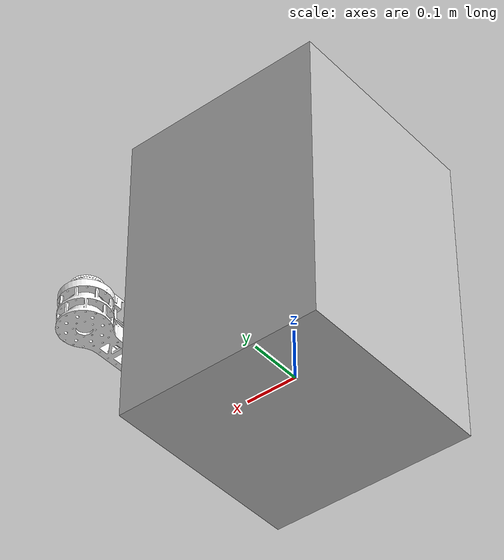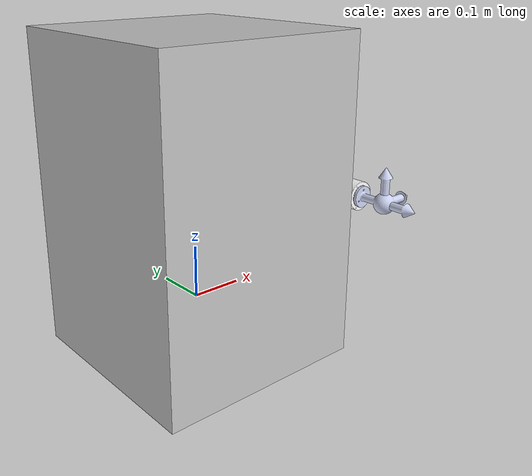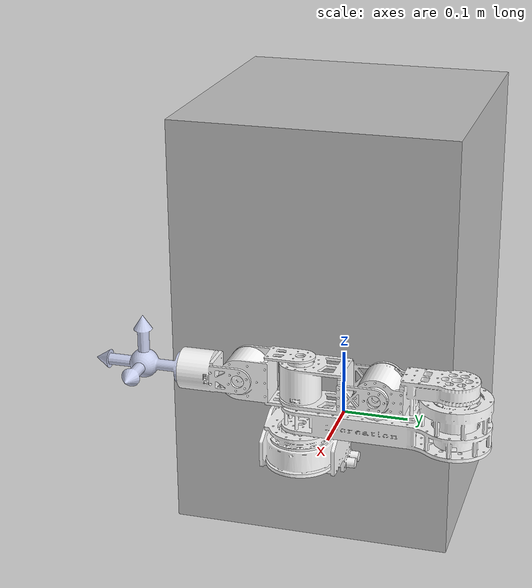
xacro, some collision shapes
<?xml version="1.0"?>
<robot xmlns:xacro="http://www.ros.org/wiki/xacro" name="rm_engineering_robot">

    <!--使用实车硬件接口还是isaac接口-->
    <xacro:arg name="hardware_type" default="real"/>

    <xacro:arg name="initial_positions_file" default="initial_positions.yaml" />

    <!-- Import rm_engineering_robot urdf file -->
    <xacro:include filename="$(find rm_engineering_robot_description)/urdf/rm_engineering_robot.urdf" />

    <!-- Import control_xacro -->
    <xacro:include filename="rm_engineering_robot.ros2_control.xacro" />

    <xacro:rm_engineering_robot_ros2_control name="FakeSystem" initial_positions_file="$(arg initial_positions_file)" hardware_type="$(arg hardware_type)"/>

</robot>

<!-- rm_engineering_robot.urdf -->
<robot
  name="rm_engineering_robot">
  <link
    name="base_link">
    <inertial>
      <origin
        xyz="0.0441017867167568 -0.00212471499501255 -0.0159376079458576"
        rpy="0 0 0" />
      <mass
        value="9.50155675587252" />
      <inertia
        ixx="0.038834278623198"
        ixy="-6.44543764662349E-08"
        ixz="4.36763988733142E-05"
        iyy="0.0503325720785253"
        iyz="-1.48514591158403E-05"
        izz="0.0507118977150954" />
    </inertial>
    <visual>
      <origin
        xyz="0 0 0"
        rpy="0 0 0" />
      <geometry>
        <mesh
          filename="package://rm_engineering_robot_description/meshes/base_link.STL" />
      </geometry>
      <material
        name="">
        <color
          rgba="0.752941176470588 0.752941176470588 0.752941176470588 1" />
      </material>
    </visual>
    <collision>
    <origin
        xyz="0 0 0.2"
        rpy="0 0 0" />
    <geometry>
    <box size="0.4 0.4 0.6"/>
  </geometry>
</collision>
  </link>
  <link
    name="link0">
    <inertial>
      <origin
        xyz="-0.0426656341820522 1.45775832843925E-05 -0.0269256057344809"
        rpy="0 0 0" />
      <mass
        value="0.527978667464703" />
      <inertia
        ixx="0.000413860140163883"
        ixy="-7.8520358597602E-08"
        ixz="-3.25375692276384E-06"
        iyy="0.000456270445303117"
        iyz="9.41252519034288E-08"
        izz="0.000620417684042287" />
    </inertial>
    <visual>
      <origin
        xyz="0 0 0"
        rpy="0 0 0" />
      <geometry>
        <mesh
          filename="package://rm_engineering_robot_description/meshes/link0.STL" />
      </geometry>
      <material
        name="">
        <color
          rgba="1 1 1 1" />
      </material>
    </visual>
    <collision>
      <origin
        xyz="0 0 0"
        rpy="0 0 0" />
      <geometry>
        <mesh
          filename="package://rm_engineering_robot_description/meshes/link0.STL" />
      </geometry>
    </collision>
  </link>
  <joint
    name="base_to_arm_link"
    type="fixed">
    <origin
      xyz="0.272038584143716 0.00806855047731339 0.100301760695516"
      rpy="0 0 0" />
    <parent
      link="base_link" />
    <child
      link="link0" />
    <axis
      xyz="0 0 0" />
  </joint>
  <link
    name="link1">
    <inertial>
      <origin
        xyz="5.40017837108442E-06 0.164026213730281 0.0271417802096993"
        rpy="0 0 0" />
      <mass
        value="0.628167715304594" />
      <inertia
        ixx="0.00193286660773188"
        ixy="7.89347095743727E-07"
        ixz="-2.29282052792647E-09"
        iyy="0.000275686301860537"
        iyz="9.04331021702343E-09"
        izz="0.00215427512180451" />
    </inertial>
    <visual>
      <origin
        xyz="0 0 0"
        rpy="0 0 0" />
      <geometry>
        <mesh
          filename="package://rm_engineering_robot_description/meshes/link1.STL" />
      </geometry>
      <material
        name="">
        <color
          rgba="1 1 1 1" />
      </material>
    </visual>
    <collision>
      <origin
        xyz="0 0 0"
        rpy="0 0 0" />
      <geometry>
        <mesh
          filename="package://rm_engineering_robot_description/meshes/link1.STL" />
      </geometry>
    </collision>
  </link>
  <joint
    name="joint0"
    type="revolute">
    <origin
      xyz="0 0 0.0109999999999993"
      rpy="0 0 0" />
    <parent
      link="link0" />
    <child
      link="link1" />
    <axis
      xyz="0 0 -1" />
    <limit
          lower="-3.14"
          upper="3.14"
          effort="87"
          velocity="2.3925" />
  </joint>
  <link
    name="link2">
    <inertial>
      <origin
        xyz="-2.10798444280069E-05 -0.0699804169564585 -0.00234469992386149"
        rpy="0 0 0" />
      <mass
        value="0.310860155101362" />
      <inertia
        ixx="0.000145070476575103"
        ixy="6.87644175047078E-09"
        ixz="-9.6407420273418E-09"
        iyy="9.9288991248962E-05"
        iyz="8.28164393041093E-08"
        izz="0.000162123902899647" />
    </inertial>
    <visual>
      <origin
        xyz="0 0 0"
        rpy="0 0 0" />
      <geometry>
        <mesh
          filename="package://rm_engineering_robot_description/meshes/link2.STL" />
      </geometry>
      <material
        name="">
        <color
          rgba="1 1 1 1" />
      </material>
    </visual>
    <collision>
      <origin
        xyz="0 0 0"
        rpy="0 0 0" />
      <geometry>
        <mesh
          filename="package://rm_engineering_robot_description/meshes/link2.STL" />
      </geometry>
    </collision>
  </link>
  <joint
    name="joint1"
    type="revolute">
    <origin
      xyz="0 0.21 0.0712499999999991"
      rpy="0 0 0" />
    <parent
      link="link1" />
    <child
      link="link2" />
    <axis
      xyz="0 0 1" />
    <limit
          lower="-3.14"
          upper="3.14"
          effort="87"
          velocity="2.3925" />
  </joint>
  <link
    name="link3">
    <inertial>
      <origin
        xyz="-0.0346835733889786 -0.0841474216239265 -0.000159405544450653"
        rpy="0 0 0" />
      <mass
        value="0.256072188172597" />
      <inertia
        ixx="0.000101103235427248"
        ixy="1.53888653597322E-08"
        ixz="-1.24862497192755E-08"
        iyy="8.52404593312206E-05"
        iyz="1.22966302116623E-07"
        izz="0.000133190301282263" />
    </inertial>
    <visual>
      <origin
        xyz="0 0 0"
        rpy="0 0 0" />
      <geometry>
        <mesh
          filename="package://rm_engineering_robot_description/meshes/link3.STL" />
      </geometry>
      <material
        name="">
        <color
          rgba="1 1 1 1" />
      </material>
    </visual>
    <collision>
      <origin
        xyz="0 0 0"
        rpy="0 0 0" />
      <geometry>
        <mesh
          filename="package://rm_engineering_robot_description/meshes/link3.STL" />
      </geometry>
    </collision>
  </link>
  <joint
    name="joint2"
    type="revolute">
    <origin
      xyz="0.0351249999999999 -0.101499999999985 -0.00699999999999912"
      rpy="0 0 0" />
    <parent
      link="link2" />
    <child
      link="link3" />
    <axis
      xyz="-1 0 0" />
    <limit
          lower="-3.14"
          upper="3.14"
          effort="87"
          velocity="2.3925" />
  </joint>
  <link
    name="link4">
    <inertial>
      <origin
        xyz="0.000491659665035282 -0.0607945845324705 -0.0326737146737962"
        rpy="0 0 0" />
      <mass
        value="0.201994868071281" />
      <inertia
        ixx="8.71444443053187E-05"
        ixy="-1.26557074286704E-08"
        ixz="1.15159856043106E-07"
        iyy="6.70727754608538E-05"
        iyz="-6.42467832117604E-09"
        izz="6.85319926253284E-05" />
    </inertial>
    <visual>
      <origin
        xyz="0 0 0"
        rpy="0 0 0" />
      <geometry>
        <mesh
          filename="package://rm_engineering_robot_description/meshes/link4.STL" />
      </geometry>
      <material
        name="">
        <color
          rgba="1 1 1 1" />
      </material>
    </visual>
    <collision>
      <origin
        xyz="0 0 0"
        rpy="0 0 0" />
      <geometry>
        <mesh
          filename="package://rm_engineering_robot_description/meshes/link4.STL" />
      </geometry>
    </collision>
  </link>
  <joint
    name="joint3"
    type="revolute">
    <origin
      xyz="-0.0350749999999039 -0.108499999999999 0.0355000000000001"
      rpy="0 0 0" />
    <parent
      link="link3" />
    <child
      link="link4" />
    <axis
      xyz="0 0 1" />
    <limit
          lower="-3.14"
          upper="3.14"
          effort="87"
          velocity="2.3925" />
  </joint>
  <link
    name="link5">
    <inertial>
      <origin
        xyz="-0.0229843538337365 -0.0560542806146513 3.7153654775246E-05"
        rpy="0 0 0" />
      <mass
        value="0.13449836912989" />
      <inertia
        ixx="4.20627020856047E-05"
        ixy="1.26561411359688E-08"
        ixz="-6.42471876009535E-09"
        iyy="4.73177802915716E-05"
        iyz="-1.15159833715651E-07"
        izz="4.05967568240309E-05" />
    </inertial>
    <visual>
      <origin
        xyz="0 0 0"
        rpy="0 0 0" />
      <geometry>
        <mesh
          filename="package://rm_engineering_robot_description/meshes/link5.STL" />
      </geometry>
      <material
        name="">
        <color
          rgba="1 1 1 1" />
      </material>
    </visual>
    <collision>
      <origin
        xyz="0 0 0"
        rpy="0 0 0" />
      <geometry>
        <mesh
          filename="package://rm_engineering_robot_description/meshes/link5.STL" />
      </geometry>
    </collision>
  </link>
  <joint
    name="joint4"
    type="revolute">
    <origin
      xyz="0.0325000447835667 -0.0779999609183491 -0.0322000000000008"
      rpy="0 0 0" />
    <parent
      link="link4" />
    <child
      link="link5" />
    <axis
      xyz="-1 0 0" />
    <limit
          lower="-3.14"
          upper="3.14"
          effort="87"
          velocity="2.3925" />
  </joint>
  <link
    name="link6">
    <inertial>
      <origin
        xyz="0.0054490201709648 -0.0506269937736408 0.00544884712569366"
        rpy="0 0 0" />
      <mass
        value="0.0750614681791985" />
      <inertia
        ixx="6.76910095526516E-05"
        ixy="7.6609433858045E-07"
        ixz="2.22854744403132E-06"
        iyy="4.06551980417372E-05"
        iyz="7.66059078129065E-07"
        izz="6.76906321090089E-05" />
    </inertial>
    <visual>
      <origin
        xyz="0 0 0"
        rpy="0 0 0" />
      <geometry>
        <mesh
          filename="package://rm_engineering_robot_description/meshes/link6.STL" />
      </geometry>
      <material
        name="">
        <color
          rgba="0.792156862745098 0.819607843137255 0.933333333333333 1" />
      </material>
    </visual>
    <collision>
      <origin
        xyz="0 0 0"
        rpy="0 0 0" />
      <geometry>
        <mesh
          filename="package://rm_engineering_robot_description/meshes/link6.STL" />
      </geometry>
    </collision>
  </link>
  <joint
    name="joint5"
    type="revolute">
    <origin
      xyz="-0.0250000447835505 -0.0885000390816639 0"
      rpy="0 0 0" />
    <parent
      link="link5" />
    <child
      link="link6" />
    <axis
      xyz="0 1 0" />
    <limit
          lower="-3.14"
          upper="3.14"
          effort="87"
          velocity="2.3925" />
  </joint>
  <link
    name="end_effect_link">
  </link>
  <joint
    name="end_effect_joint"
    type="fixed">
    <origin
      xyz="-0.000976031857056886 -0.0527955056659936 -0.000976162265352409"
      rpy="0 0 0" />
    <parent
      link="link6" />
    <child
      link="end_effect_link" />
    <axis
      xyz="0 0 0" />
  </joint>
</robot>
